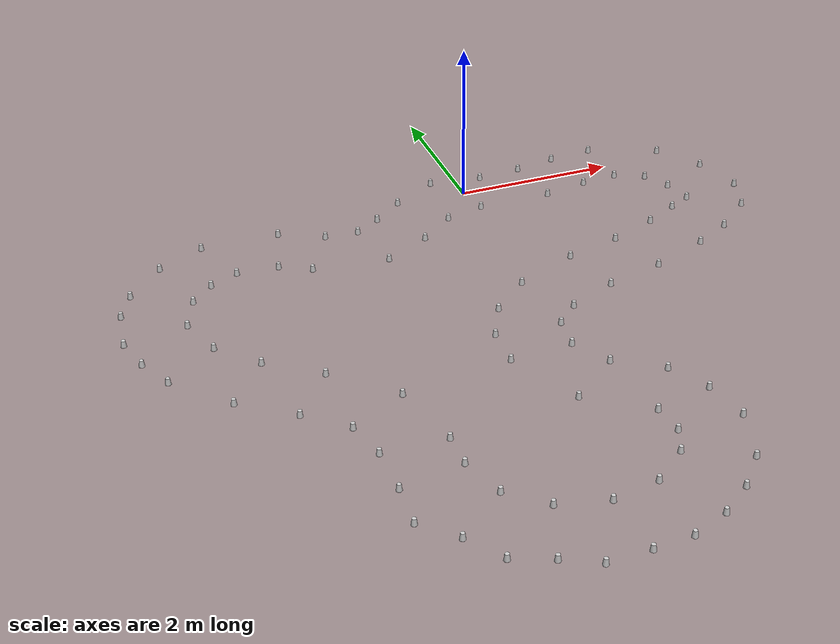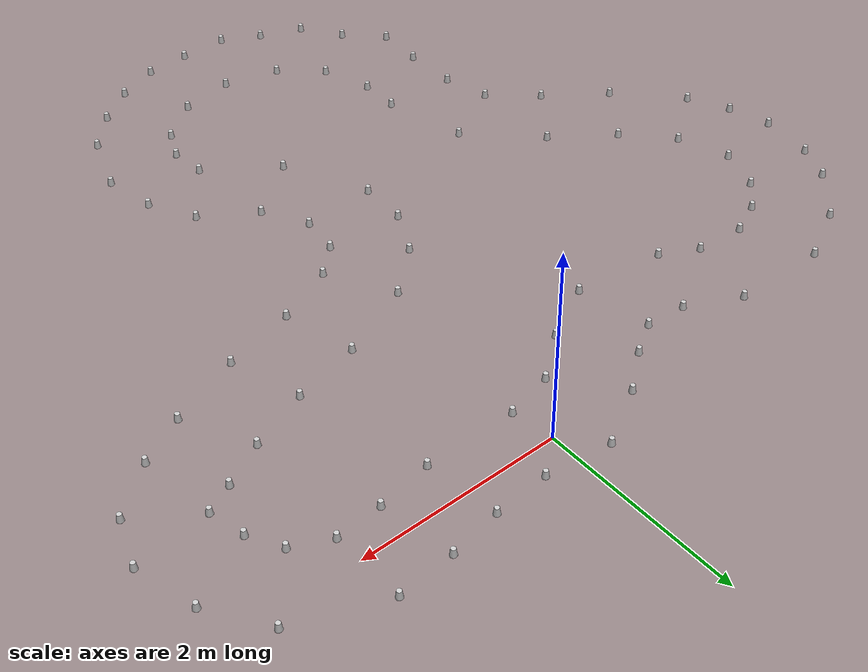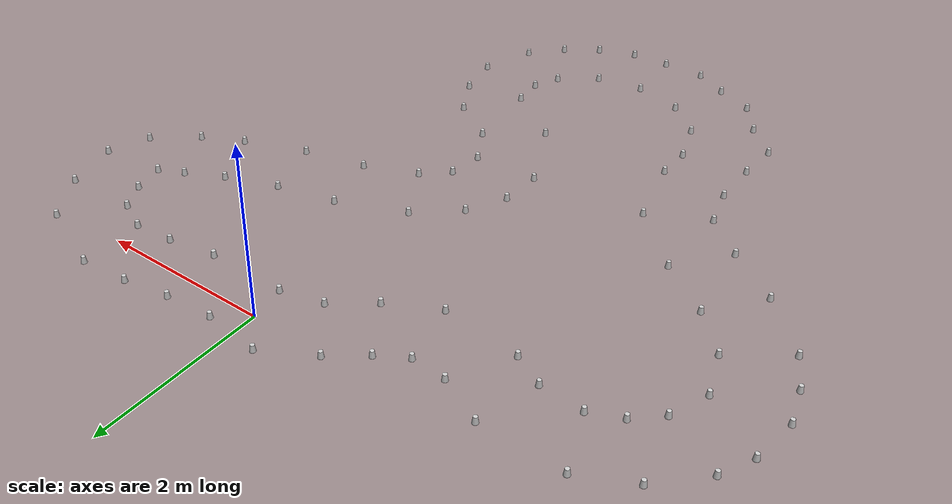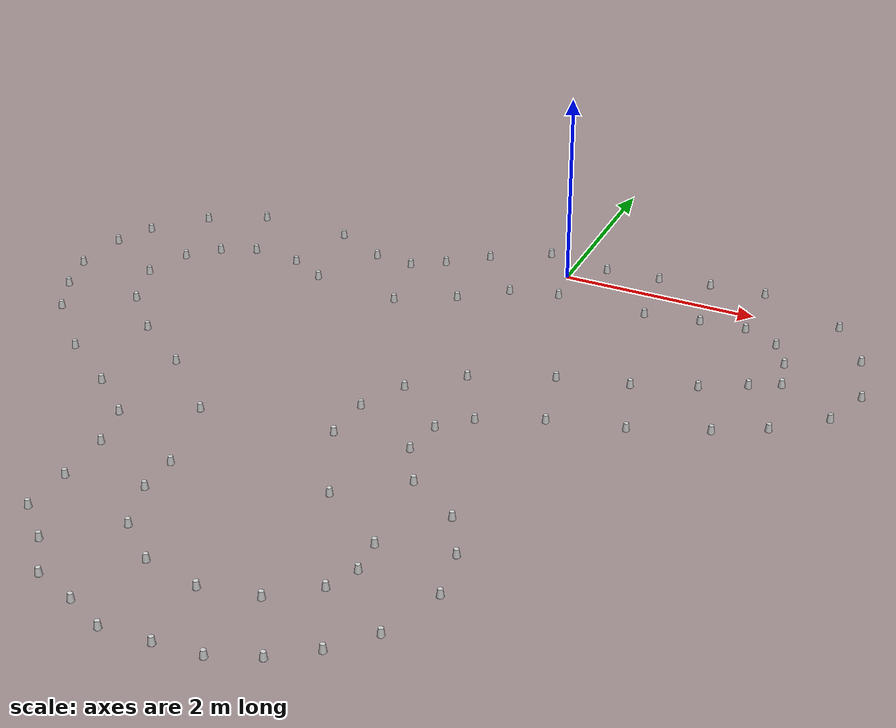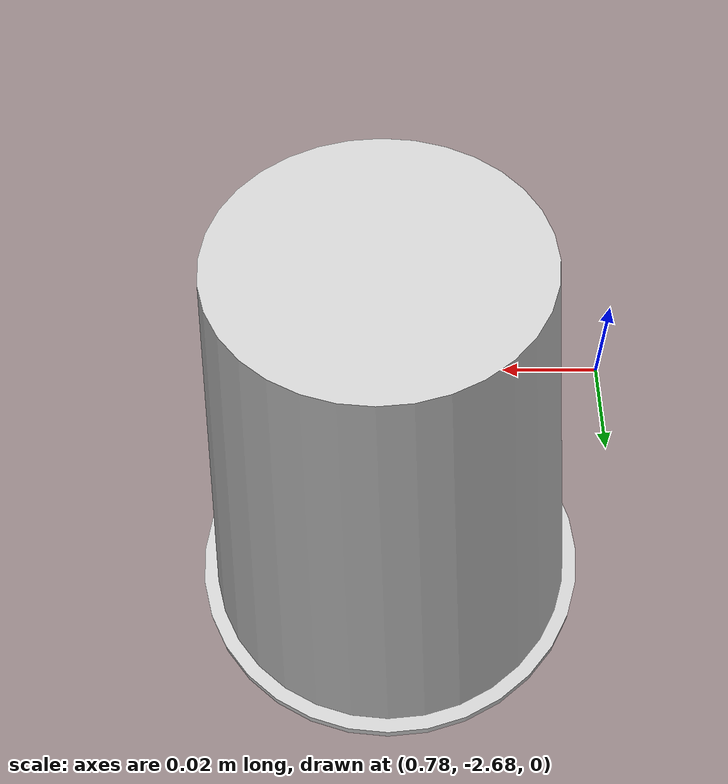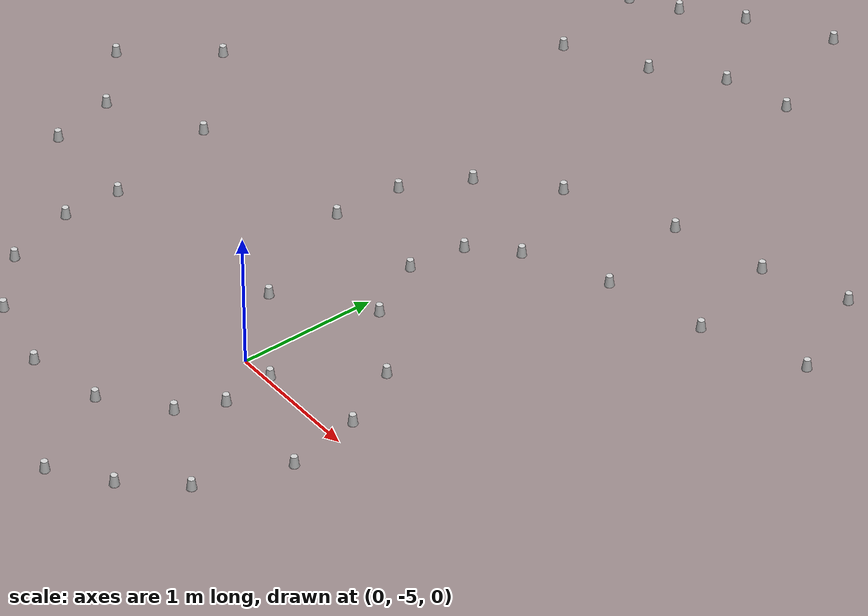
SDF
<?xml version='1.0' encoding='UTF-8'?>
<sdf version="1.4">
  <model name="some track">
    <include>
      <uri>model://cone_yellow</uri>
      <pose>0.0705128003047362 -0.4273921883927848 0 0 0 0</pose>
      <name>cone_right_0</name>
    </include>
    <include>
      <uri>model://cone_yellow</uri>
      <pose>0.995492826589353 -0.42728619874685525 0 0 0 0</pose>
      <name>cone_right_1</name>
    </include>
    <include>
      <uri>model://cone_yellow</uri>
      <pose>1.5494545118025622 -0.3296471882414627 0 0 0 0</pose>
      <name>cone_right_2</name>
    </include>
    <include>
      <uri>model://cone_yellow</uri>
      <pose>2.0116469288034424 -0.2929433291251734 0 0 0 0</pose>
      <name>cone_right_3</name>
    </include>
    <include>
      <uri>model://cone_yellow</uri>
      <pose>2.372749210324563 -0.463993980742884 0 0 0 0</pose>
      <name>cone_right_4</name>
    </include>
    <include>
      <uri>model://cone_yellow</uri>
      <pose>2.54645708310138 -0.7798647766872383 0 0 0 0</pose>
      <name>cone_right_5</name>
    </include>
    <include>
      <uri>model://cone_yellow</uri>
      <pose>2.627556937695467 -1.1439264790419146 0 0 0 0</pose>
      <name>cone_right_6</name>
    </include>
    <include>
      <uri>model://cone_yellow</uri>
      <pose>2.3431850886839696 -1.2857010253346912 0 0 0 0</pose>
      <name>cone_right_7</name>
    </include>
    <include>
      <uri>model://cone_yellow</uri>
      <pose>1.9192000200743307 -1.5084668239258134 0 0 0 0</pose>
      <name>cone_right_8</name>
    </include>
    <include>
      <uri>model://cone_yellow</uri>
      <pose>1.321928265523048 -1.7389399006019306 0 0 0 0</pose>
      <name>cone_right_9</name>
    </include>
    <include>
      <uri>model://cone_yellow</uri>
      <pose>0.6358809683693071 -1.909380413602835 0 0 0 0</pose>
      <name>cone_right_10</name>
    </include>
    <include>
      <uri>model://cone_yellow</uri>
      <pose>-0.1413756278714881 -2.2403380213367172 0 0 0 0</pose>
      <name>cone_right_11</name>
    </include>
    <include>
      <uri>model://cone_yellow</uri>
      <pose>-0.6070598401820624 -2.651896415733169 0 0 0 0</pose>
      <name>cone_right_12</name>
    </include>
    <include>
      <uri>model://cone_yellow</uri>
      <pose>-0.8597497292956879 -3.6154003017716416 0 0 0 0</pose>
      <name>cone_right_13</name>
    </include>
    <include>
      <uri>model://cone_yellow</uri>
      <pose>-0.452002727796297 -4.480810010981636 0 0 0 0</pose>
      <name>cone_right_14</name>
    </include>
    <include>
      <uri>model://cone_yellow</uri>
      <pose>0.22975047585056418 -4.970638079582557 0 0 0 0</pose>
      <name>cone_right_15</name>
    </include>
    <include>
      <uri>model://cone_yellow</uri>
      <pose>0.26362845016654474 -5.3435176736228165 0 0 0 0</pose>
      <name>cone_right_16</name>
    </include>
    <include>
      <uri>model://cone_yellow</uri>
      <pose>0.1267763437877164 -5.654649305853352 0 0 0 0</pose>
      <name>cone_right_17</name>
    </include>
    <include>
      <uri>model://cone_yellow</uri>
      <pose>-0.2853832393449937 -5.97997660878741 0 0 0 0</pose>
      <name>cone_right_18</name>
    </include>
    <include>
      <uri>model://cone_yellow</uri>
      <pose>-0.8326738772075174 -6.081221787642657 0 0 0 0</pose>
      <name>cone_right_19</name>
    </include>
    <include>
      <uri>model://cone_yellow</uri>
      <pose>-1.399049055700737 -5.939531083995447 0 0 0 0</pose>
      <name>cone_right_20</name>
    </include>
    <include>
      <uri>model://cone_yellow</uri>
      <pose>-1.7995791151114109 -5.584520882152973 0 0 0 0</pose>
      <name>cone_right_21</name>
    </include>
    <include>
      <uri>model://cone_yellow</uri>
      <pose>-1.9653427038338813 -5.061538989895934 0 0 0 0</pose>
      <name>cone_right_22</name>
    </include>
    <include>
      <uri>model://cone_yellow</uri>
      <pose>-1.9600518515275998 -4.639160662593799 0 0 0 0</pose>
      <name>cone_right_23</name>
    </include>
    <include>
      <uri>model://cone_yellow</uri>
      <pose>-2.167401246168744 -3.777845156183976 0 0 0 0</pose>
      <name>cone_right_24</name>
    </include>
    <include>
      <uri>model://cone_yellow</uri>
      <pose>-2.8184310593649697 -3.1434287577554403 0 0 0 0</pose>
      <name>cone_right_25</name>
    </include>
    <include>
      <uri>model://cone_yellow</uri>
      <pose>-3.4126236060107114 -2.706698404767886 0 0 0 0</pose>
      <name>cone_right_26</name>
    </include>
    <include>
      <uri>model://cone_yellow</uri>
      <pose>-3.830705286225103 -2.2531837997267057 0 0 0 0</pose>
      <name>cone_right_27</name>
    </include>
    <include>
      <uri>model://cone_yellow</uri>
      <pose>-4.004907286122424 -1.7217430281148995 0 0 0 0</pose>
      <name>cone_right_28</name>
    </include>
    <include>
      <uri>model://cone_yellow</uri>
      <pose>-3.836534634314827 -1.2695278999049704 0 0 0 0</pose>
      <name>cone_right_29</name>
    </include>
    <include>
      <uri>model://cone_yellow</uri>
      <pose>-3.5634495660685803 -1.0085895539111407 0 0 0 0</pose>
      <name>cone_right_30</name>
    </include>
    <include>
      <uri>model://cone_yellow</uri>
      <pose>-3.2178321976311572 -0.8542067682333792 0 0 0 0</pose>
      <name>cone_right_31</name>
    </include>
    <include>
      <uri>model://cone_yellow</uri>
      <pose>-2.7158159981876415 -0.8938320415711384 0 0 0 0</pose>
      <name>cone_right_32</name>
    </include>
    <include>
      <uri>model://cone_yellow</uri>
      <pose>-2.3503883671891206 -1.089331708320023 0 0 0 0</pose>
      <name>cone_right_33</name>
    </include>
    <include>
      <uri>model://cone_yellow</uri>
      <pose>-1.426840760823214 -1.1950641300618146 0 0 0 0</pose>
      <name>cone_right_34</name>
    </include>
    <include>
      <uri>model://cone_yellow</uri>
      <pose>-0.8564553818741182 -0.8930013781781609 0 0 0 0</pose>
      <name>cone_right_35</name>
    </include>
    <include>
      <uri>model://cone_yellow</uri>
      <pose>-0.41954876226357607 -0.5499617837314016 0 0 0 0</pose>
      <name>cone_right_36</name>
    </include>
    <include>
      <uri>model://cone_yellow</uri>
      <pose>-0.8356929561192672 -3.112854079223851 0 0 0 0</pose>
      <name>cone_right_37</name>
    </include>
    <include>
      <uri>model://cone_blue</uri>
      <pose>0.33522098915201093 0.27434107628632065 0 0 0 0</pose>
      <name>cone_left_0</name>
    </include>
    <include>
      <uri>model://cone_blue</uri>
      <pose>0.8938857153887383 0.3157992572765189 0 0 0 0</pose>
      <name>cone_left_1</name>
    </include>
    <include>
      <uri>model://cone_blue</uri>
      <pose>1.419791453419941 0.4090594458771601 0 0 0 0</pose>
      <name>cone_left_2</name>
    </include>
    <include>
      <uri>model://cone_blue</uri>
      <pose>1.987568980478264 0.4566700728390992 0 0 0 0</pose>
      <name>cone_left_3</name>
    </include>
    <include>
      <uri>model://cone_blue</uri>
      <pose>2.8501690706310034 0.11442652112835713 0 0 0 0</pose>
      <name>cone_left_4</name>
    </include>
    <include>
      <uri>model://cone_blue</uri>
      <pose>3.2113149252116724 -0.43278546329554934 0 0 0 0</pose>
      <name>cone_left_5</name>
    </include>
    <include>
      <uri>model://cone_blue</uri>
      <pose>3.3722383499525885 -1.0547659819664812 0 0 0 0</pose>
      <name>cone_left_6</name>
    </include>
    <include>
      <uri>model://cone_blue</uri>
      <pose>2.731987801554779 -1.9270530741068912 0 0 0 0</pose>
      <name>cone_left_7</name>
    </include>
    <include>
      <uri>model://cone_blue</uri>
      <pose>2.263257286694162 -2.174893562049435 0 0 0 0</pose>
      <name>cone_left_8</name>
    </include>
    <include>
      <uri>model://cone_blue</uri>
      <pose>1.5420747325818038 -2.4559026144452294 0 0 0 0</pose>
      <name>cone_left_9</name>
    </include>
    <include>
      <uri>model://cone_blue</uri>
      <pose>0.8235828011817853 -2.635512648088288 0 0 0 0</pose>
      <name>cone_left_10</name>
    </include>
    <include>
      <uri>model://cone_blue</uri>
      <pose>0.22490300288095116 -2.894814884681877 0 0 0 0</pose>
      <name>cone_left_11</name>
    </include>
    <include>
      <uri>model://cone_blue</uri>
      <pose>-0.05556408691746323 -3.160180228313417 0 0 0 0</pose>
      <name>cone_left_12</name>
    </include>
    <include>
      <uri>model://cone_blue</uri>
      <pose>-0.11105573322245449 -3.571158915673408 0 0 0 0</pose>
      <name>cone_left_13</name>
    </include>
    <include>
      <uri>model://cone_blue</uri>
      <pose>0.1379198620366748 -4.017677915349343 0 0 0 0</pose>
      <name>cone_left_14</name>
    </include>
    <include>
      <uri>model://cone_blue</uri>
      <pose>0.6644397484998735 -4.359454607748106 0 0 0 0</pose>
      <name>cone_left_15</name>
    </include>
    <include>
      <uri>model://cone_blue</uri>
      <pose>1.0134812791005 -5.358374824754328 0 0 0 0</pose>
      <name>cone_left_16</name>
    </include>
    <include>
      <uri>model://cone_blue</uri>
      <pose>0.7950194048637257 -5.9951654013962274 0 0 0 0</pose>
      <name>cone_left_17</name>
    </include>
    <include>
      <uri>model://cone_blue</uri>
      <pose>0.09427444021243829 -6.626784189411715 0 0 0 0</pose>
      <name>cone_left_18</name>
    </include>
    <include>
      <uri>model://cone_blue</uri>
      <pose>-0.7890225854146976 -6.829950419875202 0 0 0 0</pose>
      <name>cone_left_19</name>
    </include>
    <include>
      <uri>model://cone_blue</uri>
      <pose>-1.6691096137393842 -6.639221940725656 0 0 0 0</pose>
      <name>cone_left_20</name>
    </include>
    <include>
      <uri>model://cone_blue</uri>
      <pose>-2.3789365312959543 -6.060803344891178 0 0 0 0</pose>
      <name>cone_left_21</name>
    </include>
    <include>
      <uri>model://cone_blue</uri>
      <pose>-2.703326676323235 -5.195253822090545 0 0 0 0</pose>
      <name>cone_left_22</name>
    </include>
    <include>
      <uri>model://cone_blue</uri>
      <pose>-2.7096722305762153 -4.615300920034201 0 0 0 0</pose>
      <name>cone_left_23</name>
    </include>
    <include>
      <uri>model://cone_blue</uri>
      <pose>-2.8292413165379626 -4.130644987892649 0 0 0 0</pose>
      <name>cone_left_24</name>
    </include>
    <include>
      <uri>model://cone_blue</uri>
      <pose>-3.27755831911326 -3.7364735784528524 0 0 0 0</pose>
      <name>cone_left_25</name>
    </include>
    <include>
      <uri>model://cone_blue</uri>
      <pose>-3.868362051838121 -3.3023513817560124 0 0 0 0</pose>
      <name>cone_left_26</name>
    </include>
    <include>
      <uri>model://cone_blue</uri>
      <pose>-4.4332931290830375 -2.69971251284583 0 0 0 0</pose>
      <name>cone_left_27</name>
    </include>
    <include>
      <uri>model://cone_blue</uri>
      <pose>-4.74555132691435 -1.839837925715978 0 0 0 0</pose>
      <name>cone_left_28</name>
    </include>
    <include>
      <uri>model://cone_blue</uri>
      <pose>-4.4924183359647785 -0.9057744533096728 0 0 0 0</pose>
      <name>cone_left_29</name>
    </include>
    <include>
      <uri>model://cone_blue</uri>
      <pose>-4.051777342195668 -0.4393479680596029 0 0 0 0</pose>
      <name>cone_left_30</name>
    </include>
    <include>
      <uri>model://cone_blue</uri>
      <pose>-3.4826797816524353 -0.1525261020909438 0 0 0 0</pose>
      <name>cone_left_31</name>
    </include>
    <include>
      <uri>model://cone_blue</uri>
      <pose>-2.522959263918963 -0.16905188176595976 0 0 0 0</pose>
      <name>cone_left_32</name>
    </include>
    <include>
      <uri>model://cone_blue</uri>
      <pose>-1.9936954289771978 -0.42958164365178386 0 0 0 0</pose>
      <name>cone_left_33</name>
    </include>
    <include>
      <uri>model://cone_blue</uri>
      <pose>-1.5851634380318638 -0.46196527596266523 0 0 0 0</pose>
      <name>cone_left_34</name>
    </include>
    <include>
      <uri>model://cone_blue</uri>
      <pose>-1.2669629702063137 -0.26532031273036155 0 0 0 0</pose>
      <name>cone_left_35</name>
    </include>
    <include>
      <uri>model://cone_blue</uri>
      <pose>-0.8906161696098127 0.033643817454960145 0 0 0 0</pose>
      <name>cone_left_36</name>
    </include>
    <include>
      <uri>model://cone_blue</uri>
      <pose>-0.32425861030140624 0.35951595290782024 0 0 0 0</pose>
      <name>cone_left_37</name>
    </include>
    <include>
      <uri>model://cone_blue</uri>
      <pose>3.2019466161268753 -1.5381746460478638 0 0 0 0</pose>
      <name>cone_left_38</name>
    </include>
    <include>
      <uri>model://cone_blue</uri>
      <pose>0.4698105055736548 -6.356424535594925 0 0 0 0</pose>
      <name>cone_left_39</name>
    </include>
    <include>
      <uri>model://cone_blue</uri>
      <pose>-0.33771740887557655 -6.800564888542006 0 0 0 0</pose>
      <name>cone_left_40</name>
    </include>
    <include>
      <uri>model://cone_blue</uri>
      <pose>-1.2798333090663476 -6.84094128426446 0 0 0 0</pose>
      <name>cone_left_41</name>
    </include>
    <include>
      <uri>model://cone_blue</uri>
      <pose>-2.100820022089721 -6.46409492418816 0 0 0 0</pose>
      <name>cone_left_42</name>
    </include>
    <include>
      <uri>model://cone_blue</uri>
      <pose>-2.7333835550749512 -5.710402204035546 0 0 0 0</pose>
      <name>cone_left_43</name>
    </include>
    <include>
      <uri>model://cone_blue</uri>
      <pose>0.9139508585207281 -4.822121498141385 0 0 0 0</pose>
      <name>cone_left_44</name>
    </include>
    <include>
      <uri>model://cone_blue</uri>
      <pose>-4.631074154030642 -2.278408567626329 0 0 0 0</pose>
      <name>cone_left_45</name>
    </include>
    <include>
      <uri>model://cone_blue</uri>
      <pose>-4.671450549753089 -1.2824574731389404 0 0 0 0</pose>
      <name>cone_left_46</name>
    </include>
  </model>
</sdf>

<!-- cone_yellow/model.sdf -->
<sdf version='1.4'>
  <model name="cone_yellow">
    <link name="link">
    <collision name="collision"><geometry><box><size> 0.05 0.05 0.01</size>
             </box></geometry></collision>
      <visual name="visual">
        <geometry>
          <mesh>
            <uri>model://cup.dae</uri>
            <scale>1 1 1</scale>
          </mesh>
        </geometry>
        <material>
            <script>
              <uri>model://cone_yellow/materials/scripts</uri>
              <uri>model://cone_yellow/materials/textures</uri>
              <name>cone_yellow/Image</name>
            </script>
        </material>
      </visual>
    </link>
  </model>
</sdf>

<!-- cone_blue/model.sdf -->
<sdf version='1.4'>
  <model name="cone_blue">
    <link name="link">
    <collision name="collision"><geometry><box><size> 0.05 0.05 0.01</size>
             </box></geometry></collision>
      <visual name="visual">
        <geometry>
          <mesh>
            <uri>model://cup.dae</uri>
            <scale>1 1 1</scale>
          </mesh>
        </geometry>
        <material>
            <script>
              <uri>model://cone_blue/materials/scripts</uri>
              <uri>model://cone_blue/materials/textures</uri>
              <name>cone_blue/Image</name>
            </script>
        </material>
      </visual>
    </link>
  </model>
</sdf>
